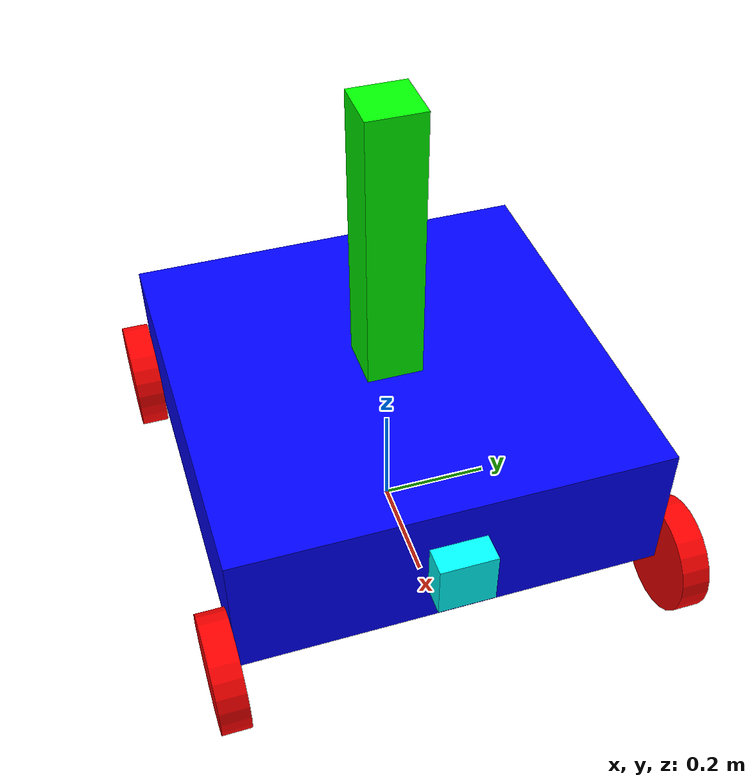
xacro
<?xml version="1.0"?>
<robot name="mailbot" xmlns:xacro="http://www.ros.org/wiki/xacro">
  <xacro:include filename="mailbot_properties.xacro"/>

  <link name="base_footprint"></link>
  <joint name="world_base_joint" type="fixed">
    <origin xyz="0 0 ${wheel_radius + (base_height / 2)}" rpy="0 0 0"/>
    <parent link="base_footprint"/>
    <child link="base_link"/>
  </joint>

  <!-- Base -->
  <xacro:link_prism name="base" color="${base_color}" mass="${base_mass}" length="${base_length}" height="${base_height}">
    <origin xyz="0 0 0" rpy="0 0 0"/>
  </xacro:link_prism>

  <!-- Front right wheel -->
  <xacro:joint_wheel name="fr_wheel" parent="base" child="fr_wheel">
    <origin xyz="${base_length/2} -${base_length/2} ${-(base_height/2)}" rpy="0 0 0"/>
  </xacro:joint_wheel>
  <xacro:link_cylinder name="fr_wheel" color="${wheel_color}" mass="${wheel_mass}" length="${wheel_length}" radius="${wheel_radius}">
    <origin xyz="0 -${wheel_length/2} 0" rpy="${pi/2} 0 0"/>
  </xacro:link_cylinder>

  <!-- Front left wheel -->
  <xacro:joint_wheel name="fl_wheel" parent="base" child="fl_wheel">
    <origin xyz="${base_length/2} ${base_length/2} ${-(base_height/2)}" rpy="0 0 0"/>
  </xacro:joint_wheel>
  <xacro:link_cylinder name="fl_wheel" color="${wheel_color}" mass="${wheel_mass}" length="${wheel_length}" radius="${wheel_radius}">
    <origin xyz="0 ${wheel_length/2} 0" rpy="${pi/2} 0 0"/>
  </xacro:link_cylinder>

  <!-- Rear right wheel -->
  <xacro:joint_wheel name="rr_wheel" parent="base" child="rr_wheel">
    <origin xyz="-${base_length/2} -${base_length/2} ${-(base_height/2)}" rpy="0 0 0"/>
  </xacro:joint_wheel>
  <xacro:link_cylinder name="rr_wheel" color="${wheel_color}" mass="${wheel_mass}" length="${wheel_length}" radius="${wheel_radius}">
    <origin xyz="0 -${wheel_length/2} 0" rpy="${pi/2} 0 0"/>
  </xacro:link_cylinder>

  <!-- Rear left wheel -->
  <xacro:joint_wheel name="rl_wheel" parent="base" child="rl_wheel">
    <origin xyz="-${base_length/2} ${base_length/2} ${-(base_height/2)}" rpy="0 0 0"/>
  </xacro:joint_wheel>
  <xacro:link_cylinder name="rl_wheel" color="${wheel_color}" mass="${wheel_mass}" length="${wheel_length}" radius="${wheel_radius}">
    <origin xyz="0 ${wheel_length/2} 0" rpy="${pi/2} 0 0"/>
  </xacro:link_cylinder>

  <!-- Camera -->
  <xacro:joint_sensor name="camera" parent="base" child="camera">
    <origin xyz="0 0 ${(base_height+camera_height)/2}" rpy="0 0 0"/>
  </xacro:joint_sensor>
  <xacro:link_prism name="camera" color="${camera_color}" mass="${camera_mass}" length="${camera_length}" height="${camera_height}">
    <origin xyz="0 0 0" rpy="0 0 0"/>
  </xacro:link_prism>

  <!-- LIDAR -->
  <xacro:joint_sensor name="lidar" parent="base" child="lidar">
    <origin xyz="${base_length/2} 0 0" rpy="0 0 0"/>
  </xacro:joint_sensor>
  <xacro:link_prism name="lidar" color="${lidar_color}" mass="${lidar_mass}" length="${lidar_length}" height="${lidar_height}">
    <origin xyz="0 0 0" rpy="0 0 0"/>
  </xacro:link_prism>

  <xacro:include filename="mailbot_gazebo_plugins.xacro"/>

</robot>

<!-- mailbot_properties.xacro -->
<robot xmlns:xacro="http://www.ros.org/wiki/xacro">
  <material name="black"><color rgba="0 0 0 1"/></material>
  <material name="blue"><color rgba="0 0 1 1"/></material>
  <material name="green"><color rgba="0 1 0 1"/></material>
  <material name="turquoise"><color rgba="0 1 1 1"/></material>
  <material name="red"><color rgba="1 0 0 1"/></material>
  <material name="purple"><color rgba="1 0 1 1"/></material>
  <material name="yellow"><color rgba="1 1 0 1"/></material>
  <material name="white"><color rgba="1 1 1 1"/></material>

  <xacro:property name="base_mass" value="24"/>
  <xacro:property name="base_color" value="blue"/>
  <xacro:property name="base_length" value="0.75"/>
  <xacro:property name="base_height" value="0.25"/>

  <xacro:property name="wheel_mass" value="12"/>
  <xacro:property name="wheel_color" value="red"/>
  <xacro:property name="wheel_length" value="0.05"/>
  <xacro:property name="wheel_radius" value="0.1"/>

  <xacro:property name="camera_mass" value="0.1"/>
  <xacro:property name="camera_color" value="green"/>
  <xacro:property name="camera_length" value="0.1"/>
  <xacro:property name="camera_height" value="0.5"/>

  <xacro:property name="lidar_mass" value="0.1"/>
  <xacro:property name="lidar_color" value="turquoise"/>
  <xacro:property name="lidar_length" value="0.1"/>
  <xacro:property name="lidar_height" value="0.1"/>

  <xacro:macro name="link_prism" params="name color mass length height *origin">
    <link name="${name}_link">
      <visual>
        <xacro:insert_block name="origin"/>
        <material name="${color}"/>
        <geometry>
          <box size="${length} ${length} ${height}"/>
        </geometry>
      </visual>
      <collision>
        <xacro:insert_block name="origin"/>
        <geometry>
          <box size="${length} ${length} ${height}"/>
        </geometry>
      </collision>
      <inertial>
        <xacro:insert_block name="origin"/>
        <mass value="${mass}"/>
        <inertia ixx="${(1/12) * mass * (length*length + length*length)}" ixy="0" ixz="0" iyy="${(1/12) * mass * (length*length + length*length)}" iyz="0" izz="${(1/12) * mass * (height*height + length*length)}"/>
      </inertial>
    </link>
  </xacro:macro>

  <xacro:macro name="link_cylinder" params="name color mass length radius *origin">
    <link name="${name}_link">
      <visual>
        <xacro:insert_block name="origin"/>
        <material name="${color}"/>
        <geometry>
          <cylinder length="${length}" radius="${radius}"/>
        </geometry>
      </visual>
      <collision>
        <xacro:insert_block name="origin"/>
        <geometry>
          <cylinder length="${length}" radius="${radius}"/>
        </geometry>
      </collision>
      <inertial>
        <xacro:insert_block name="origin"/>
        <mass value="${mass}"/>
        <inertia ixx="${(1/12) * mass * (3*radius*radius + length*length)}" ixy="0.0" ixz="0.0"
          iyy="${(1/12) * mass * (3*radius*radius + length*length)}" iyz="0.0" izz="${(1/2) * mass * (radius*radius)}"/>
      </inertial>
    </link>
  </xacro:macro>

  <xacro:macro name="joint_wheel" params="name parent child *origin">
    <joint name="${name}_joint" type="continuous">
      <axis xyz="0 1 0"/>
      <xacro:insert_block name="origin"/>
      <limit effort="1000.0" velocity="200"/>
      <parent link="${parent}_link"/>
      <child link="${child}_link"/>
    </joint>
  </xacro:macro>

  <xacro:macro name="joint_sensor" params="name parent child *origin">
    <joint name="${name}_joint" type="fixed">
      <axis xyz="0 1 0"/>
      <xacro:insert_block name="origin"/>
      <parent link="${parent}_link"/>
      <child link="${child}_link"/>
    </joint>
  </xacro:macro>

</robot>
